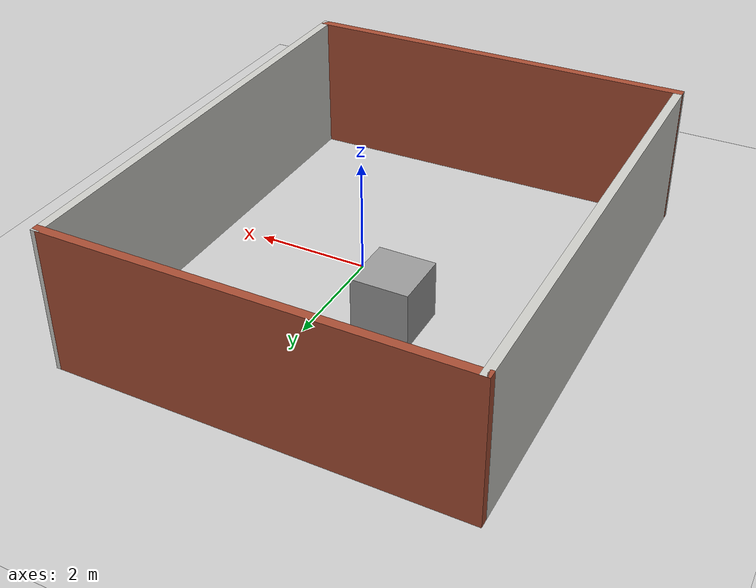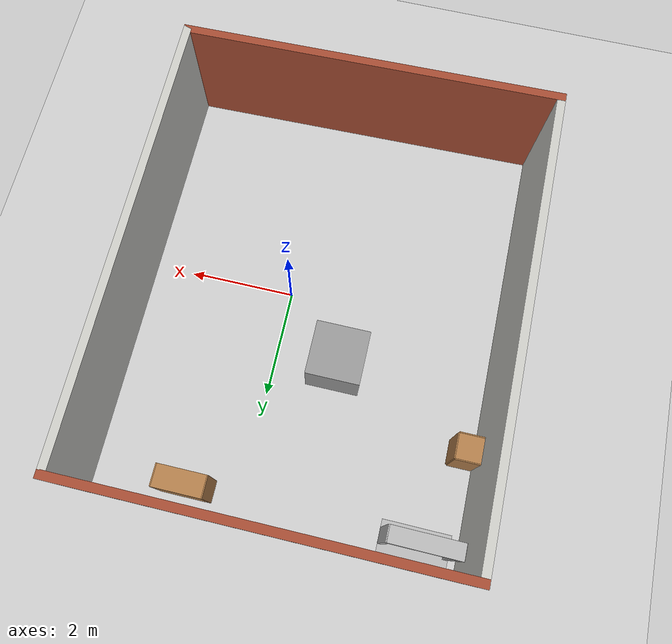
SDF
<sdf version="1.6">
 <world name="default">
  <light name="sun" type="directional">
   <pose>0 0 10 0 -0 0</pose>
   <diffuse>0.8 0.8 0.8 1</diffuse>
   <specular>0.2 0.2 0.2 1</specular>
   <attenuation>
    <range>1000</range>
    <constant>0.9</constant>
    <linear>0.01</linear>
    <quadratic>0.001</quadratic>
   </attenuation>
   <direction>-0.5 0.1 -0.9</direction>
  </light>
  <model name="ground_plane">
   <static>1</static>
   <link name="link">
    <collision name="collision">
     <geometry><plane><normal>0 0 1</normal><size>100 100</size></plane></geometry>
     <surface>
      <contact><collide_bitmask>65535</collide_bitmask></contact>
      <friction><ode><mu>100</mu><mu2>50</mu2></ode></friction>
     </surface>
    </collision>
    <visual name="visual">
     <cast_shadows>0</cast_shadows>
     <geometry><plane><normal>0 0 1</normal><size>100 100</size></plane></geometry>
     <material>
      <script><uri>file://media/materials/scripts/gazebo.material</uri><name>Gazebo/Grey</name></script>
     </material>
    </visual>
   </link>
  </model>
  <gravity>0 0 -9.8</gravity>
  <magnetic_field>6e-06 2.3e-05 -4.2e-05</magnetic_field>
  <atmosphere type="adiabatic"/>
  <physics name="default_physics" default="0" type="ode">
   <max_step_size>0.001</max_step_size>
   <real_time_factor>1</real_time_factor>
   <real_time_update_rate>1000</real_time_update_rate>
  </physics>
  <scene><ambient>0.4 0.4 0.4 1</ambient><background>0.7 0.7 0.7 1</background><shadows>1</shadows></scene>
  <spherical_coordinates>
   <surface_model>EARTH_WGS84</surface_model>
   <latitude_deg>0</latitude_deg>
   <longitude_deg>0</longitude_deg>
   <elevation>0</elevation>
   <heading_deg>0</heading_deg>
  </spherical_coordinates>
  <model name="bookshelf">
   <static>1</static>
   <link name="link">
    <inertial><mass>1</mass></inertial>
    <collision name="back">
     <pose>0 0.005 0.6 0 -0 0</pose>
     <geometry><box><size>0.9 0.01 1.2</size></box></geometry>
    </collision>
    <visual name="visual1">
     <pose>0 0.005 0.6 0 -0 0</pose>
     <geometry><box><size>0.9 0.01 1.2</size></box></geometry>
     <material>
      <script><uri>file://media/materials/scripts/gazebo.material</uri><name>Gazebo/Wood</name></script>
     </material>
    </visual>
    <collision name="left_side">
     <pose>0.45 -0.195 0.6 0 -0 0</pose>
     <geometry><box><size>0.02 0.4 1.2</size></box></geometry>
    </collision>
    <visual name="visual2">
     <pose>0.45 -0.195 0.6 0 -0 0</pose>
     <geometry><box><size>0.02 0.4 1.2</size></box></geometry>
     <material>
      <script><uri>file://media/materials/scripts/gazebo.material</uri><name>Gazebo/Wood</name></script>
     </material>
    </visual>
    <collision name="right_side">
     <pose>-0.45 -0.195 0.6 0 -0 0</pose>
     <geometry><box><size>0.02 0.4 1.2</size></box></geometry>
    </collision>
    <visual name="visual3">
     <pose>-0.45 -0.195 0.6 0 -0 0</pose>
     <geometry><box><size>0.02 0.4 1.2</size></box></geometry>
     <material>
      <script><uri>file://media/materials/scripts/gazebo.material</uri><name>Gazebo/Wood</name></script>
     </material>
    </visual>
    <collision name="bottom">
     <pose>0 -0.195 0.03 0 -0 0</pose>
     <geometry><box><size>0.88 0.4 0.06</size></box></geometry>
    </collision>
    <visual name="visual4">
     <pose>0 -0.195 0.03 0 -0 0</pose>
     <geometry><box><size>0.88 0.4 0.06</size></box></geometry>
     <material>
      <script><uri>file://media/materials/scripts/gazebo.material</uri><name>Gazebo/Wood</name></script>
     </material>
    </visual>
    <collision name="top">
     <pose>0 -0.195 1.19 0 -0 0</pose>
     <geometry><box><size>0.88 0.4 0.02</size></box></geometry>
    </collision>
    <visual name="visual5">
     <pose>0 -0.195 1.19 0 -0 0</pose>
     <geometry><box><size>0.88 0.4 0.02</size></box></geometry>
     <material>
      <script><uri>file://media/materials/scripts/gazebo.material</uri><name>Gazebo/Wood</name></script>
     </material>
    </visual>
    <collision name="low_shelf">
     <pose>0 -0.195 0.43 0 -0 0</pose>
     <geometry><box><size>0.88 0.4 0.02</size></box></geometry>
    </collision>
    <visual name="visual6">
     <pose>0 -0.195 0.43 0 -0 0</pose>
     <geometry><box><size>0.88 0.4 0.02</size></box></geometry>
     <material>
      <script><uri>file://media/materials/scripts/gazebo.material</uri><name>Gazebo/Wood</name></script>
     </material>
    </visual>
    <collision name="high_shelf">
     <pose>0 -0.195 0.8 0 -0 0</pose>
     <geometry><box><size>0.88 0.4 0.02</size></box></geometry>
    </collision>
    <visual name="visual7">
     <pose>0 -0.195 0.8 0 -0 0</pose>
     <geometry><box><size>0.88 0.4 0.02</size></box></geometry>
     <material>
      <script><uri>file://media/materials/scripts/gazebo.material</uri><name>Gazebo/Wood</name></script>
     </material>
    </visual>
   </link>
   <pose>0.940866 4.16102 0 0 -0 0</pose>
  </model>
  <model name="Untitled1">
   <link name="Wall_0">
    <pose>-3.44554 0.000523 0 0 0 -1.5708</pose>
    <visual name="Wall_0_Visual">
     <pose>0 0 1.25 0 -0 0</pose>
     <geometry><box><size>8.5 0.15 2.5</size></box></geometry>
     <material>
      <script><uri>file://media/materials/scripts/gazebo.material</uri><name>Gazebo/CeilingTiled</name></script>
      <ambient>0.996078 0.47451 0.0196078 1</ambient>
      <shader type="pixel"/>
      <diffuse>1 1 1 1</diffuse>
      <specular>0 0 0 1</specular>
      <emissive>0 0 0 1</emissive>
     </material>
     <meta><layer>0</layer></meta>
    </visual>
    <collision name="Wall_0_Collision">
     <pose>0 0 1.25 0 -0 0</pose>
     <geometry><box><size>8.5 0.15 2.5</size></box></geometry>
     <surface>
      <friction>
       <ode><mu>1</mu><mu2>1</mu2><fdir1>0 0 0</fdir1><slip1>0</slip1><slip2>0</slip2></ode>
       <torsional>
        <coefficient>1</coefficient>
        <patch_radius>0</patch_radius>
        <surface_radius>0</surface_radius>
        <use_patch_radius>1</use_patch_radius>
        <ode><slip>0</slip></ode>
       </torsional>
      </friction>
      <bounce><restitution_coefficient>0</restitution_coefficient><threshold>1e+06</threshold></bounce>
      <contact>
       <collide_without_contact>0</collide_without_contact>
       <collide_without_contact_bitmask>1</collide_without_contact_bitmask>
       <collide_bitmask>1</collide_bitmask>
       <ode>
        <soft_cfm>0</soft_cfm>
        <soft_erp>0.2</soft_erp>
        <kp>1e+13</kp>
        <kd>1</kd>
        <max_vel>0.01</max_vel>
        <min_depth>0</min_depth>
       </ode>
       <bullet>
        <split_impulse>1</split_impulse>
        <split_impulse_penetration_threshold>-0.01</split_impulse_penetration_threshold>
        <soft_cfm>0</soft_cfm>
        <soft_erp>0.2</soft_erp>
        <kp>1e+13</kp>
        <kd>1</kd>
       </bullet>
      </contact>
     </surface>
    </collision>
   </link>
   <link name="Wall_3">
    <pose>-0.020542 4.17552 0 0 -0 3.14159</pose>
    <visual name="Wall_3_Visual">
     <pose>0 0 1.25 0 -0 0</pose>
     <geometry><box><size>7 0.15 2.5</size></box></geometry>
     <material>
      <script><uri>file://media/materials/scripts/gazebo.material</uri><name>Gazebo/Bricks</name></script>
      <ambient>0 0 0.498039 1</ambient>
      <shader type="pixel"/>
      <diffuse>1 1 1 1</diffuse>
      <specular>0.2 0.2 0.2 1</specular>
      <emissive>0 0 0 1</emissive>
     </material>
     <meta><layer>0</layer></meta>
    </visual>
    <collision name="Wall_3_Collision">
     <pose>0 0 1.25 0 -0 0</pose>
     <geometry><box><size>7 0.15 2.5</size></box></geometry>
     <surface>
      <friction>
       <ode><mu>1</mu><mu2>1</mu2><fdir1>0 0 0</fdir1><slip1>0</slip1><slip2>0</slip2></ode>
       <torsional>
        <coefficient>1</coefficient>
        <patch_radius>0</patch_radius>
        <surface_radius>0</surface_radius>
        <use_patch_radius>1</use_patch_radius>
        <ode><slip>0</slip></ode>
       </torsional>
      </friction>
      <bounce><restitution_coefficient>0</restitution_coefficient><threshold>1e+06</threshold></bounce>
      <contact>
       <collide_without_contact>0</collide_without_contact>
       <collide_without_contact_bitmask>1</collide_without_contact_bitmask>
       <collide_bitmask>1</collide_bitmask>
       <ode>
        <soft_cfm>0</soft_cfm>
        <soft_erp>0.2</soft_erp>
        <kp>1e+13</kp>
        <kd>1</kd>
        <max_vel>0.01</max_vel>
        <min_depth>0</min_depth>
       </ode>
       <bullet>
        <split_impulse>1</split_impulse>
        <split_impulse_penetration_threshold>-0.01</split_impulse_penetration_threshold>
        <soft_cfm>0</soft_cfm>
        <soft_erp>0.2</soft_erp>
        <kp>1e+13</kp>
        <kd>1</kd>
       </bullet>
      </contact>
     </surface>
    </collision>
   </link>
   <link name="Wall_6">
    <pose>3.425 0.066396 0 0 -0 1.5758</pose>
    <visual name="Wall_6_Visual">
     <pose>0 0 1.25 0 -0 0</pose>
     <geometry><box><size>8.36836 0.15 2.5</size></box></geometry>
     <material>
      <script><uri>file://media/materials/scripts/gazebo.material</uri><name>Gazebo/CeilingTiled</name></script>
      <ambient>1 1 0 1</ambient>
      <shader type="pixel"/>
      <diffuse>1 1 1 1</diffuse>
      <specular>0 0 0 1</specular>
      <emissive>0 0 0 1</emissive>
     </material>
     <meta><layer>0</layer></meta>
    </visual>
    <collision name="Wall_6_Collision">
     <pose>0 0 1.25 0 -0 0</pose>
     <geometry><box><size>8.36836 0.15 2.5</size></box></geometry>
     <surface>
      <friction>
       <ode><mu>1</mu><mu2>1</mu2><fdir1>0 0 0</fdir1><slip1>0</slip1><slip2>0</slip2></ode>
       <torsional>
        <coefficient>1</coefficient>
        <patch_radius>0</patch_radius>
        <surface_radius>0</surface_radius>
        <use_patch_radius>1</use_patch_radius>
        <ode><slip>0</slip></ode>
       </torsional>
      </friction>
      <bounce><restitution_coefficient>0</restitution_coefficient><threshold>1e+06</threshold></bounce>
      <contact>
       <collide_without_contact>0</collide_without_contact>
       <collide_without_contact_bitmask>1</collide_without_contact_bitmask>
       <collide_bitmask>1</collide_bitmask>
       <ode>
        <soft_cfm>0</soft_cfm>
        <soft_erp>0.2</soft_erp>
        <kp>1e+13</kp>
        <kd>1</kd>
        <max_vel>0.01</max_vel>
        <min_depth>0</min_depth>
       </ode>
       <bullet>
        <split_impulse>1</split_impulse>
        <split_impulse_penetration_threshold>-0.01</split_impulse_penetration_threshold>
        <soft_cfm>0</soft_cfm>
        <soft_erp>0.2</soft_erp>
        <kp>1e+13</kp>
        <kd>1</kd>
       </bullet>
      </contact>
     </surface>
    </collision>
   </link>
   <link name="Wall_8">
    <pose>0 -4.1086 0 0 -0 0.019116</pose>
    <visual name="Wall_8_Visual">
     <pose>0 0 1.25 0 -0 0</pose>
     <geometry><box><size>7.04234 0.15 2.5</size></box></geometry>
     <material>
      <script><uri>file://media/materials/scripts/gazebo.material</uri><name>Gazebo/Bricks</name></script>
      <ambient>0.666667 0 0 1</ambient>
      <shader type="pixel"/>
      <diffuse>1 1 1 1</diffuse>
      <specular>0.2 0.2 0.2 1</specular>
      <emissive>0 0 0 1</emissive>
     </material>
     <meta><layer>0</layer></meta>
    </visual>
    <collision name="Wall_8_Collision">
     <pose>0 0 1.25 0 -0 0</pose>
     <geometry><box><size>7.04234 0.15 2.5</size></box></geometry>
     <surface>
      <friction>
       <ode><mu>1</mu><mu2>1</mu2><fdir1>0 0 0</fdir1><slip1>0</slip1><slip2>0</slip2></ode>
       <torsional>
        <coefficient>1</coefficient>
        <patch_radius>0</patch_radius>
        <surface_radius>0</surface_radius>
        <use_patch_radius>1</use_patch_radius>
        <ode><slip>0</slip></ode>
       </torsional>
      </friction>
      <bounce><restitution_coefficient>0</restitution_coefficient><threshold>1e+06</threshold></bounce>
      <contact>
       <collide_without_contact>0</collide_without_contact>
       <collide_without_contact_bitmask>1</collide_without_contact_bitmask>
       <collide_bitmask>1</collide_bitmask>
       <ode>
        <soft_cfm>0</soft_cfm>
        <soft_erp>0.2</soft_erp>
        <kp>1e+13</kp>
        <kd>1</kd>
        <max_vel>0.01</max_vel>
        <min_depth>0</min_depth>
       </ode>
       <bullet>
        <split_impulse>1</split_impulse>
        <split_impulse_penetration_threshold>-0.01</split_impulse_penetration_threshold>
        <soft_cfm>0</soft_cfm>
        <soft_erp>0.2</soft_erp>
        <kp>1e+13</kp>
        <kd>1</kd>
       </bullet>
      </contact>
     </surface>
    </collision>
   </link>
   <static>1</static>
   <pose>-0.62786 0.235744 0 0 -0 0</pose>
  </model>
  <model name="cabinet">
   <static>1</static>
   <link name="cabinet_bottom_plate">
    <inertial>
     <pose>0 0 -1 0 -0 0</pose>
     <inertia><ixx>2.05</ixx><ixy>0</ixy><ixz>0</ixz><iyy>2.05</iyy><iyz>0</iyz><izz>2.05</izz></inertia>
     <mass>25</mass>
    </inertial>
    <collision name="cabinet_bottom_plate_geom">
     <pose>0 0 0.01 0 -0 0</pose>
     <geometry><box><size>0.45 0.45 0.02</size></box></geometry>
    </collision>
    <visual name="cabinet_bottom_plate_geom_visual">
     <pose>0 0 0.01 0 -0 0</pose>
     <geometry><box><size>0.45 0.45 0.02</size></box></geometry>
     <material>
      <script><uri>file://media/materials/scripts/gazebo.material</uri><name>Gazebo/Wood</name></script>
     </material>
    </visual>
    <collision name="cabinet_bottom_plate_geom_cabinet_back_plate">
     <pose>0.235 0 0.51 0 -0 0</pose>
     <geometry><box><size>0.02 0.45 1.02</size></box></geometry>
    </collision>
    <visual name="cabinet_bottom_plate_geom_cabinet_back_plate_visual">
     <pose>0.235 0 0.51 0 -0 0</pose>
     <geometry><box><size>0.02 0.45 1.02</size></box></geometry>
     <material>
      <script><uri>file://media/materials/scripts/gazebo.material</uri><name>Gazebo/Wood</name></script>
     </material>
    </visual>
    <collision name="cabinet_bottom_plate_geom_cabinet_left_plate">
     <pose>0 0.235 0.51 0 -0 0</pose>
     <geometry><box><size>0.45 0.02 1.02</size></box></geometry>
    </collision>
    <visual name="cabinet_bottom_plate_geom_cabinet_left_plate_visual">
     <pose>0 0.235 0.51 0 -0 0</pose>
     <geometry><box><size>0.45 0.02 1.02</size></box></geometry>
     <material>
      <script><uri>file://media/materials/scripts/gazebo.material</uri><name>Gazebo/Wood</name></script>
     </material>
    </visual>
    <collision name="cabinet_bottom_plate_geom_cabinet_middle_plate">
     <pose>0 0 0.51 0 -0 0</pose>
     <geometry><box><size>0.45 0.45 0.02</size></box></geometry>
    </collision>
    <visual name="cabinet_bottom_plate_geom_cabinet_middle_plate_visual">
     <pose>0 0 0.51 0 -0 0</pose>
     <geometry><box><size>0.45 0.45 0.02</size></box></geometry>
     <material>
      <script><uri>file://media/materials/scripts/gazebo.material</uri><name>Gazebo/Wood</name></script>
     </material>
    </visual>
    <collision name="cabinet_bottom_plate_geom_cabinet_right_plate">
     <pose>0 -0.235 0.51 0 -0 0</pose>
     <geometry><box><size>0.45 0.02 1.02</size></box></geometry>
    </collision>
    <visual name="cabinet_bottom_plate_geom_cabinet_right_plate_visual">
     <pose>0 -0.235 0.51 0 -0 0</pose>
     <geometry><box><size>0.45 0.02 1.02</size></box></geometry>
     <material>
      <script><uri>file://media/materials/scripts/gazebo.material</uri><name>Gazebo/Wood</name></script>
     </material>
    </visual>
    <collision name="cabinet_bottom_plate_geom_cabinet_top_plate">
     <pose>0 0 1.01 0 -0 0</pose>
     <geometry><box><size>0.45 0.45 0.02</size></box></geometry>
    </collision>
    <visual name="cabinet_bottom_plate_geom_cabinet_top_plate_visual">
     <pose>0 0 1.01 0 -0 0</pose>
     <geometry><box><size>0.45 0.45 0.02</size></box></geometry>
     <material>
      <script><uri>file://media/materials/scripts/gazebo.material</uri><name>Gazebo/Wood</name></script>
     </material>
    </visual>
   </link>
   <pose>-3.7628 2.29583 0 0 -0 0</pose>
  </model>
  <model name="frc2016_portcullis">
   <link name="base">
    <inertial>
     <mass>50</mass>
     <pose>0 0 1.02941 0 -0 0</pose>
     <inertia><ixx>3.81711</ixx><ixy>0</ixy><ixz>0</ixz><iyy>4.87698</iyy><iyz>0</iyz><izz>1.6283</izz></inertia>
    </inertial>
    <visual name="platform">
     <pose>0 0 0.07284 0 -0 0</pose>
     <geometry><box><size>1.27 0.5842 0.003175</size></box></geometry>
    </visual>
    <collision name="platform">
     <pose>0 0 0.07284 0 -0 0</pose>
     <geometry><box><size>1.27 0.5842 0.003175</size></box></geometry>
    </collision>
    <visual name="left_column">
     <pose>0.59284 0 0.99042 0 -0 0</pose>
     <geometry><box><size>0.08375 0.28575 1.83198</size></box></geometry>
    </visual>
    <collision name="left_column">
     <pose>0.59284 0 0.99042 0 -0 0</pose>
     <geometry><box><size>0.08375 0.28575 1.83198</size></box></geometry>
    </collision>
    <visual name="right_column">
     <pose>-0.57759 0 0.99042 0 -0 0</pose>
     <geometry><box><size>0.08375 0.28575 1.83198</size></box></geometry>
    </visual>
    <collision name="right_column">
     <pose>-0.57759 0 0.99042 0 -0 0</pose>
     <geometry><box><size>0.08375 0.28575 1.83198</size></box></geometry>
    </collision>
    <visual name="top">
     <pose>-0.00034 0 1.77722 0 -0 0</pose>
     <geometry><box><size>1.22962 0.28575 0.26657</size></box></geometry>
    </visual>
    <collision name="top">
     <pose>-0.00034 0 1.77722 0 -0 0</pose>
     <geometry><box><size>1.22962 0.28575 0.26657</size></box></geometry>
    </collision>
    <visual name="castor1">
     <pose>-0.45651 -0.16234 0.03272 0 -0 0</pose>
     <geometry><sphere><radius>0.03272</radius></sphere></geometry>
    </visual>
    <collision name="castor1">
     <pose>-0.45651 -0.16234 0.03272 0 -0 0</pose>
     <geometry><sphere><radius>0.03272</radius></sphere></geometry>
    </collision>
    <visual name="castor2">
     <pose>-0.27883 0.21836 0.03272 0 -0 0</pose>
     <geometry><sphere><radius>0.03272</radius></sphere></geometry>
    </visual>
    <collision name="castor2">
     <pose>-0.27883 0.21836 0.03272 0 -0 0</pose>
     <geometry><sphere><radius>0.03272</radius></sphere></geometry>
    </collision>
    <visual name="castor3">
     <pose>0.28083 0.21906 0.03272 0 -0 0</pose>
     <geometry><sphere><radius>0.03272</radius></sphere></geometry>
    </visual>
    <collision name="castor3">
     <pose>0.28083 0.21906 0.03272 0 -0 0</pose>
     <geometry><sphere><radius>0.03272</radius></sphere></geometry>
    </collision>
    <visual name="castor4">
     <pose>0.45871 -0.16186 0.03272 0 -0 0</pose>
     <geometry><sphere><radius>0.03272</radius></sphere></geometry>
    </visual>
    <collision name="castor4">
     <pose>0.45871 -0.16186 0.03272 0 -0 0</pose>
     <geometry><sphere><radius>0.03272</radius></sphere></geometry>
    </collision>
   </link>
   <link name="gate">
    <pose>-0.0287 0.02885 0.93327 0 -0 0</pose>
    <inertial>
     <mass>2</mass>
     <inertia><ixx>3.81711</ixx><ixy>0</ixy><ixz>0</ixz><iyy>4.87698</iyy><iyz>0</iyz><izz>1.6283</izz></inertia>
    </inertial>
    <collision name="collision"><geometry><box><size>1.1938 0.02496 1.45732</size></box></geometry></collision>
    <visual name="horz_1">
     <pose>0 0 -0.70326 0 -0 0</pose>
     <geometry><box><size>1.1938 0.02496 0.0508</size></box></geometry>
     <material><ambient>0.4 0.4 0.4 1</ambient><diffuse>0.4 0.4 0.4 1</diffuse></material>
    </visual>
    <visual name="horz_2">
     <pose>0 0 -0.44926 0 -0 0</pose>
     <geometry><box><size>1.1938 0.02496 0.0508</size></box></geometry>
     <material><ambient>0.4 0.4 0.4 1</ambient><diffuse>0.4 0.4 0.4 1</diffuse></material>
    </visual>
    <visual name="horz_3">
     <pose>0 0 -0.14517 0 -0 0</pose>
     <geometry><box><size>1.1938 0.02496 0.0508</size></box></geometry>
     <material><ambient>0.4 0.4 0.4 1</ambient><diffuse>0.4 0.4 0.4 1</diffuse></material>
    </visual>
    <visual name="horz_4">
     <pose>0 0 0.16034 0 -0 0</pose>
     <geometry><box><size>1.1938 0.02496 0.0508</size></box></geometry>
     <material><ambient>0.4 0.4 0.4 1</ambient><diffuse>0.4 0.4 0.4 1</diffuse></material>
    </visual>
    <visual name="horz_5">
     <pose>0 0 0.46514 0 -0 0</pose>
     <geometry><box><size>1.1938 0.02496 0.0508</size></box></geometry>
     <material><ambient>0.4 0.4 0.4 1</ambient><diffuse>0.4 0.4 0.4 1</diffuse></material>
    </visual>
    <visual name="horz_6">
     <pose>0 0 0.72994 0 -0 0</pose>
     <geometry><box><size>1.1938 0.02496 0.0508</size></box></geometry>
     <material><ambient>0.4 0.4 0.4 1</ambient><diffuse>0.4 0.4 0.4 1</diffuse></material>
    </visual>
    <visual name="vert_1">
     <pose>-0.58448 0 0 0 -0 0</pose>
     <geometry><box><size>0.02495 0.02496 1.45732</size></box></geometry>
     <material><ambient>0.4 0.4 0.4 1</ambient><diffuse>0.4 0.4 0.4 1</diffuse></material>
    </visual>
    <visual name="vert_2">
     <pose>-0.38128 0 0 0 -0 0</pose>
     <geometry><box><size>0.0508 0.02496 1.45732</size></box></geometry>
     <material><ambient>0.4 0.4 0.4 1</ambient><diffuse>0.4 0.4 0.4 1</diffuse></material>
    </visual>
    <visual name="vert_3">
     <pose>-0.12728 0 0 0 -0 0</pose>
     <geometry><box><size>0.0508 0.02496 1.45732</size></box></geometry>
     <material><ambient>0.4 0.4 0.4 1</ambient><diffuse>0.4 0.4 0.4 1</diffuse></material>
    </visual>
    <visual name="vert_4">
     <pose>0.12672 0 0 0 -0 0</pose>
     <geometry><box><size>0.0508 0.02496 1.45732</size></box></geometry>
     <material><ambient>0.4 0.4 0.4 1</ambient><diffuse>0.4 0.4 0.4 1</diffuse></material>
    </visual>
    <visual name="vert_5">
     <pose>0.38072 0 0 0 -0 0</pose>
     <geometry><box><size>0.0508 0.02496 1.45732</size></box></geometry>
     <material><ambient>0.4 0.4 0.4 1</ambient><diffuse>0.4 0.4 0.4 1</diffuse></material>
    </visual>
    <visual name="vert_6">
     <pose>0.58392 0 0 0 -0 0</pose>
     <geometry><box><size>0.02495 0.02496 1.45732</size></box></geometry>
     <material><ambient>0.4 0.4 0.4 1</ambient><diffuse>0.4 0.4 0.4 1</diffuse></material>
    </visual>
   </link>
   <joint name="joint" type="prismatic">
    <parent>base</parent>
    <child>gate</child>
    <axis>
     <xyz>0 0 1</xyz>
     <limit><lower>0</lower><upper>1</upper></limit>
     <use_parent_model_frame>0</use_parent_model_frame>
     <dynamics><spring_reference>0</spring_reference><spring_stiffness>0</spring_stiffness></dynamics>
    </axis>
   </joint>
   <pose>-3.2158 4.02484 0 0 0 -0.005466</pose>
  </model>
  <model name="unit_box">
   <pose>-1.17058 1.1507 0.5 0 -0 0</pose>
   <link name="link">
    <inertial>
     <mass>1</mass>
     <inertia>
      <ixx>0.166667</ixx>
      <ixy>0</ixy>
      <ixz>0</ixz>
      <iyy>0.166667</iyy>
      <iyz>0</iyz>
      <izz>0.166667</izz>
     </inertia>
    </inertial>
    <collision name="collision"><geometry><box><size>1 1 1</size></box></geometry></collision>
    <visual name="visual">
     <geometry><box><size>1 1 1</size></box></geometry>
     <material>
      <script><name>Gazebo/Grey</name><uri>file://media/materials/scripts/gazebo.material</uri></script>
     </material>
    </visual>
   </link>
  </model>
 </world>
</sdf>
